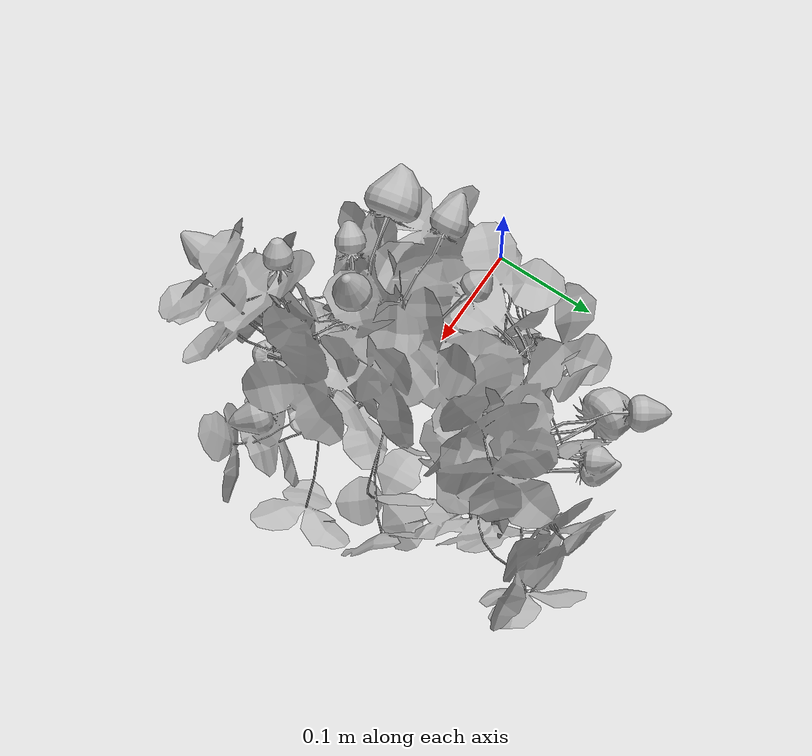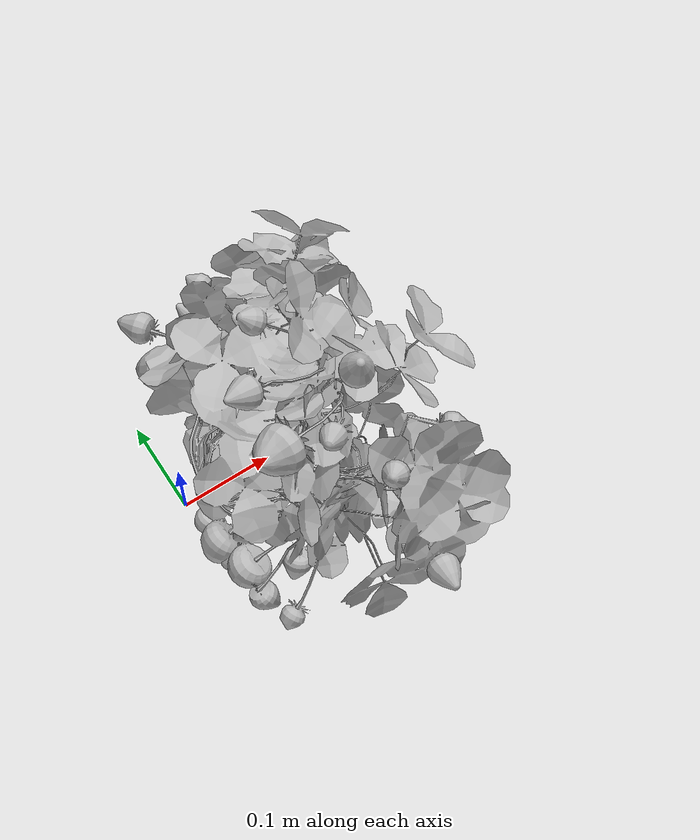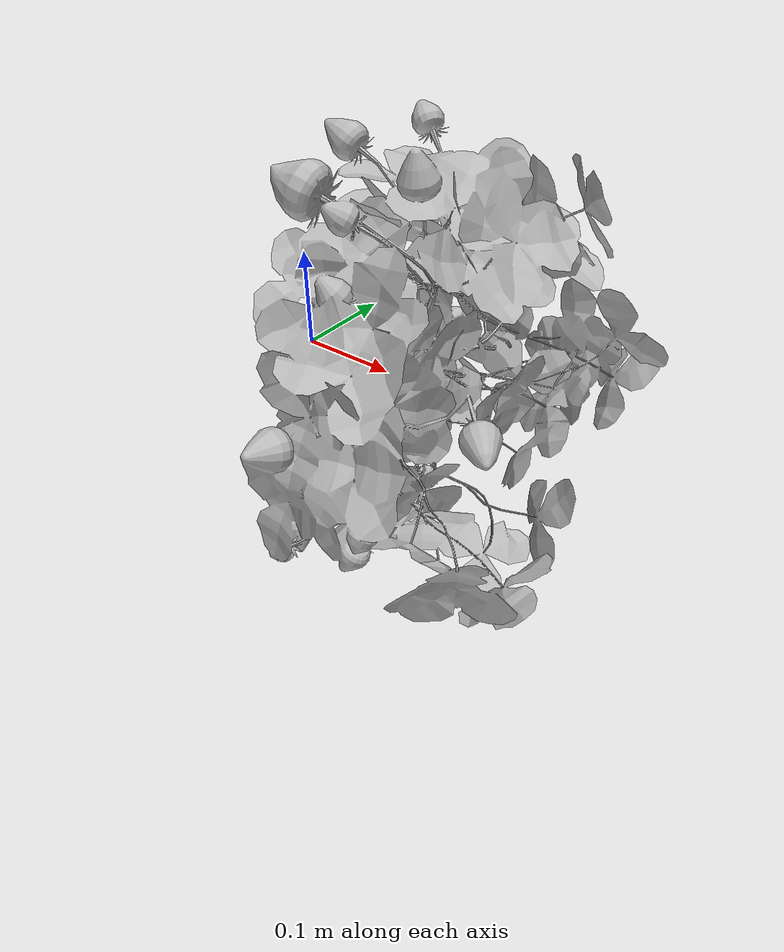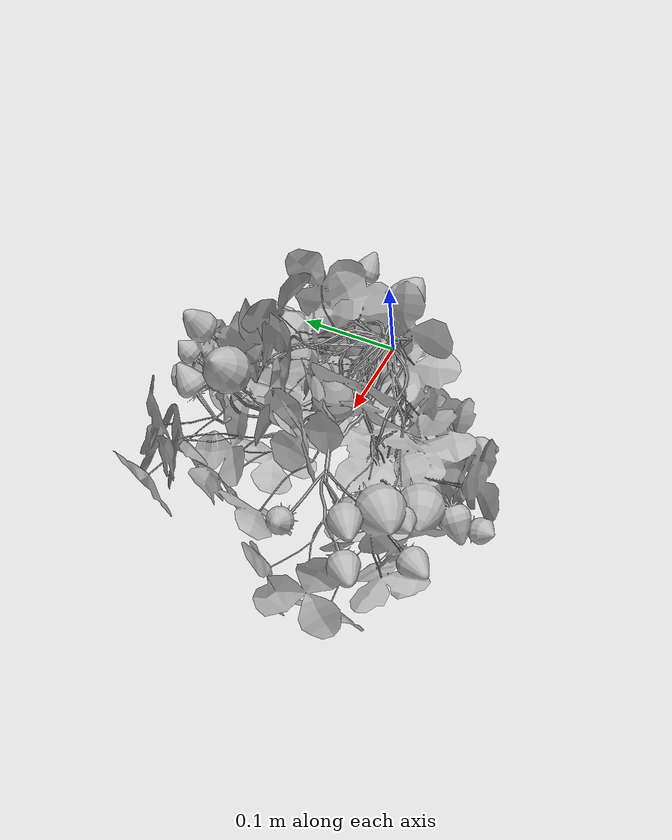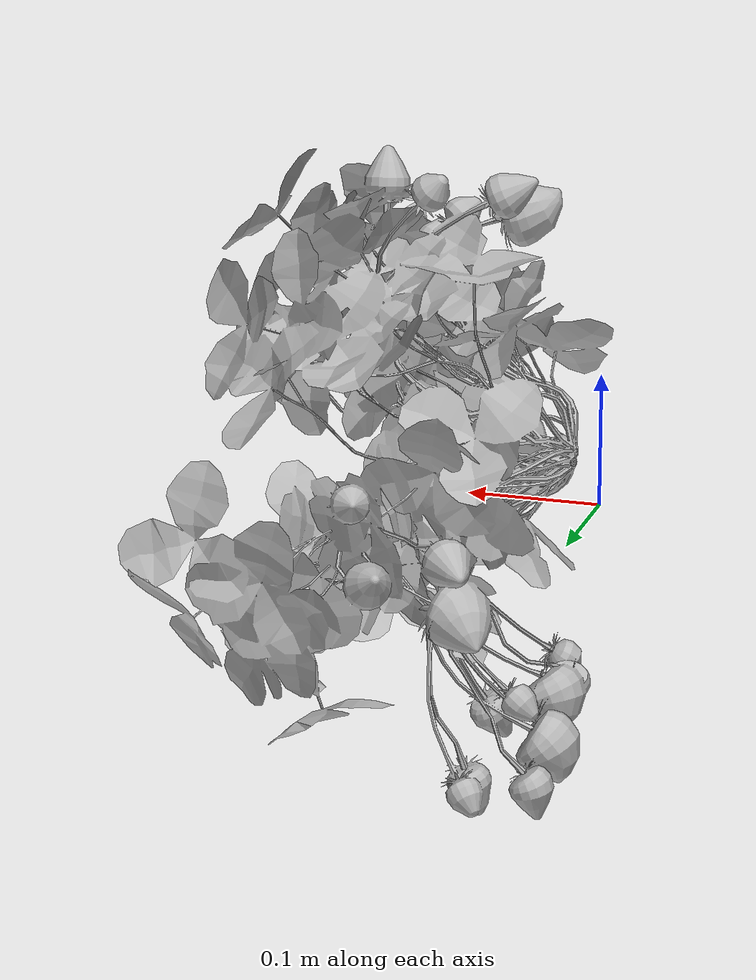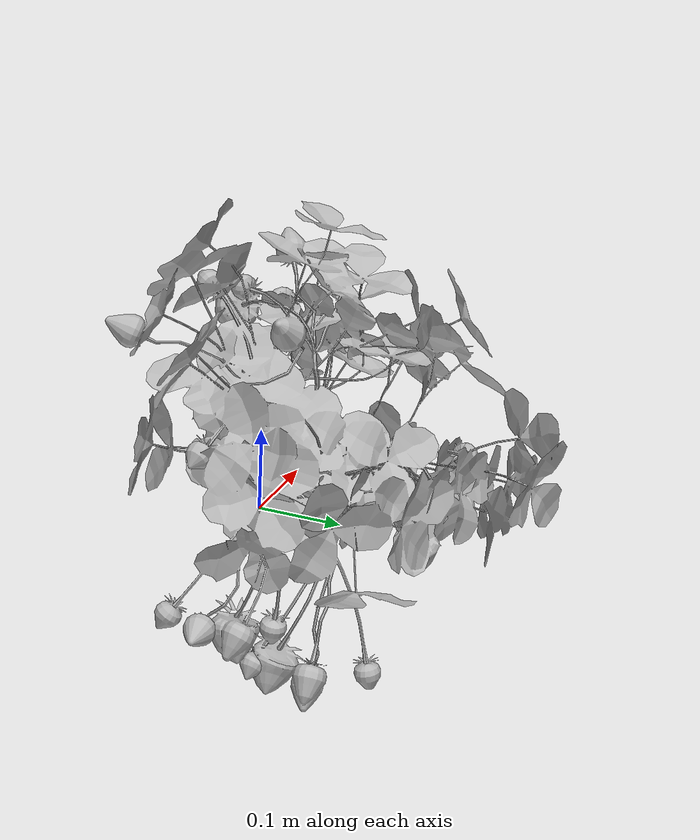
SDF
<?xml version="1.0"?>
<sdf version="1.6">
  <model name="strawberry_leafscorch">
    <static>true</static>
    <link name="link">
      <visual name="visual">
        <pose>0 0 0 1.5708 0 1.5708</pose>
        <geometry>
          <mesh>
            <uri>model://strawberry_leafscorch/meshes/strawberry_leafscorch.obj</uri>
          </mesh>
        </geometry>
      </visual>
    </link>
  </model>
</sdf>
